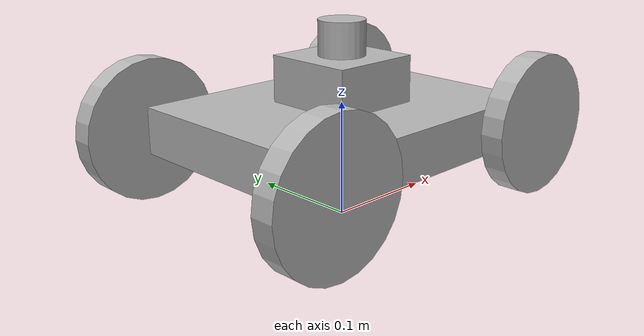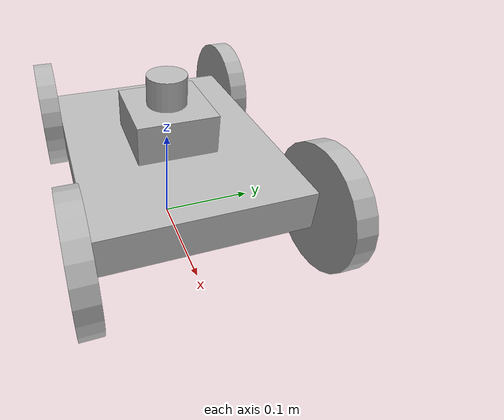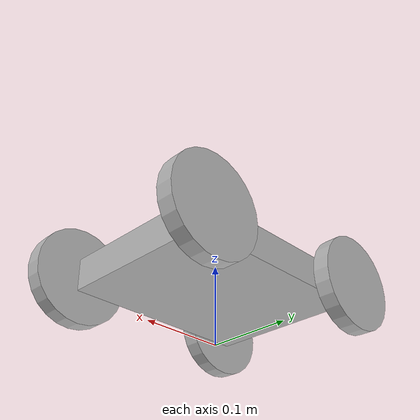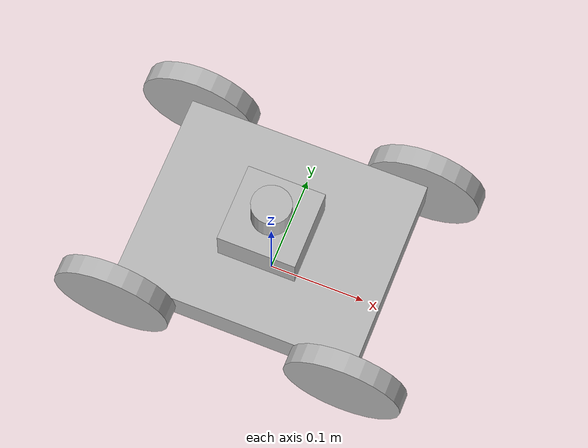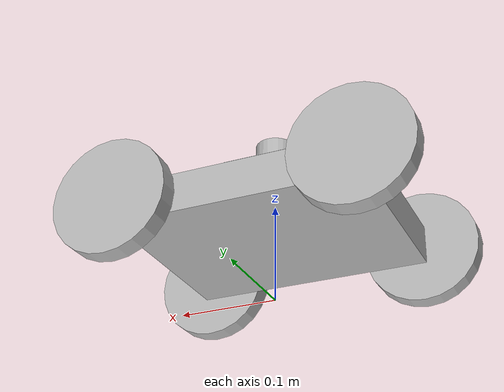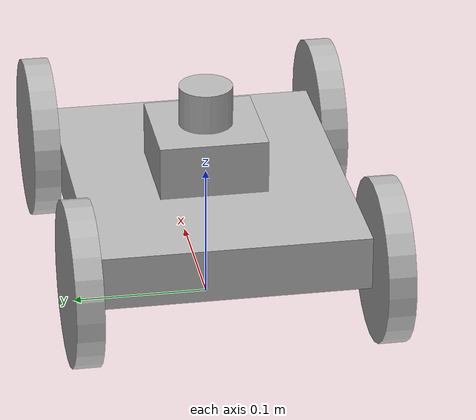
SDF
<?xml version="1.0" ?>
<sdf version="1.5">
	<model name="My_Agent">
	<pose> 0 0 0.08 0 0 0</pose>
	<link name="chassis">

        <inertial>
            <mass> 20 </mass>
            <inertia>
                <!-- 1/12 * mass * (d^2 + h^2) -->
                <ixx> 0.1068 </ixx>
                <iyy> 0.1068 </iyy>
                <izz> 0.1068 </izz>
            </inertia>
        </inertial>

        <collision name="chassis_collision">
		<geometry>
			<box>
				<size> 0.25 0.20 0.04 </size>
			</box>
		</geometry>
		</collision>

		<visual name="chassis_visual">
		<geometry>
			<box>
				<size> 0.25 0.20 0.04 </size>
			</box>
		</geometry>
		</visual>
	</link>

	<static> false </static>

	<link name="front_left_wheel">
        <pose> 0.120 0.11 0 0 1.5707 1.5707 </pose>
        <collision name="collision">
          <geometry>
            <cylinder>
              <radius>.06</radius>
              <length>.02</length>
            </cylinder>
          </geometry>
        </collision>
        <visual name="visual">
          <geometry>
            <cylinder>
              <radius>.06</radius>
              <length>.02</length>
            </cylinder>
          </geometry>
        </visual>
    </link>

	<link name="rear_left_wheel">
        <pose> -0.120 0.11 0 0 1.5707 1.5707 </pose>
        <collision name="collision">
          <geometry>
            <cylinder>
              <radius>.06</radius>
              <length>.02</length>
            </cylinder>
          </geometry>
        </collision>
        <visual name="visual">
          <geometry>
            <cylinder>
              <radius>.06</radius>
              <length>.02</length>
            </cylinder>
          </geometry>
        </visual>
    </link>

	<link name="front_right_wheel">
        <pose> 0.120 -0.11 0 0 1.5707 1.5707 </pose>
        <collision name="collision">
          <geometry>
            <cylinder>
              <radius>.06</radius>
              <length>.02</length>
            </cylinder>
          </geometry>
        </collision>
        <visual name="visual">
          <geometry>
            <cylinder>
              <radius>.06</radius>
              <length>.02</length>
            </cylinder>
          </geometry>
        </visual>
	</link>

	<link name="rear_right_wheel">
        <pose> -0.120 -0.11 0 0 1.5707 1.5707 </pose>
        <collision name="collision">
          <geometry>
            <cylinder>
              <radius>.06</radius>
              <length>.02</length>
            </cylinder>
          </geometry>
        </collision>
        <visual name="visual">
          <geometry>
            <cylinder>
              <radius>.06</radius>
              <length>.02</length>
            </cylinder>
          </geometry>
        </visual>
    </link>

	<!-- Motion Joints -->
	<joint type="revolute" name="front_left_wheel_hinge">
        <pose>0 0 -0.0175 0 0 0</pose>
        <child>front_left_wheel</child>
        <parent>chassis</parent>
        <axis>
          <xyz>0 0 1</xyz>
        </axis>
	</joint>

	<joint type="revolute" name="rear_left_wheel_hinge">
        <pose>0 0 -0.0175 0 0 0</pose>
        <child>rear_left_wheel</child>
        <parent>chassis</parent>
        <axis>
          <xyz>0 0 1</xyz>
        </axis>
	</joint>

	<joint type="revolute" name="front_right_wheel_hinge">
        <pose>0 0 0.0175 0 0 0</pose>
        <child>front_right_wheel</child>
        <parent>chassis</parent>
        <axis>
          <xyz>0 0 1</xyz>
        </axis>
	</joint>

	<joint type="revolute" name="rear_right_wheel_hinge">
        <pose>0 0 0.0175 0 0 0</pose>
        <child>rear_right_wheel</child>
        <parent>chassis</parent>
        <axis>
          <xyz>0 0 1</xyz>
        </axis>
	</joint>

	<!-- Make base for Lidar sensor -->
	<link name="Lidar_Base">
		<pose> 0 0 0.04 0 0 0 </pose>
		<collision name="Lidar Base collision">
			<geometry>
				<box>
					<size> 0.08 0.08 0.04 </size>
				</box>
			</geometry>
		</collision>
		<visual name="Lidar_base_visual">
			<geometry>
				<box>
					<size> 0.08 0.08 0.04 </size>
				</box>
			</geometry>
		</visual>
	</link>

	<joint name="Lidar_Base_Joint" type="fixed">
		<pose> 0 0 -0.02 0 0 0 </pose>
		<child> Lidar_Base </child>
		<parent> chassis </parent>
	</joint>

	<!-- Add Lidar sensor -->
	<link name="lidar_link">
		<pose> 0 0 0.075 0 0 0</pose>
		<collision name="lidar_collision">
		<geometry>
			<cylinder>
				<radius>.02</radius>
          		<length>.03</length>
			</cylinder>
		</geometry>
		</collision>

		<visual name="lidar_visual">
		<geometry>
			<cylinder>
				<radius>.02</radius>
          		<length>.03</length>
			</cylinder>
		</geometry>
		</visual>

    <!-- This is the ray sensor -->
	<sensor name="Lidar" type="ray">
		<pose>0 0 0 0 0 0</pose>
        <visualize> false </visualize>
		<update_rate> 20 </update_rate>
		<ray>
          <scan>
            <horizontal>
              <samples>360</samples> <!-- 1800 Before -->
              <resolution>1</resolution>
              <min_angle>-3.141592</min_angle>
              <max_angle>3.141592</max_angle>
            </horizontal>
            <vertical>
              <samples>16</samples>
              <resolution>1</resolution>
              <min_angle>-0.26</min_angle>
              <max_angle>0.26</max_angle>
            </vertical>
          </scan>
          <range>
            <min>0.25</min>
            <max>15</max> <!-- Was 150 before -->
            <resolution>0.01</resolution>
          </range>
          <noise>
            <type>gaussian</type>
            <mean>0</mean>
            <stddev>0.01</stddev>
          </noise>
        </ray>
        <plugin name="Lidar_plugin" filename="libgazebo_ros_block_laser.so">
            <topicName> My_Agent/ScanResults </topicName>
            <frameName> lidar_link  </frameName>
            <gaussianNoise> 0.01 </gaussianNoise>
        </plugin>
        </sensor>
    </link>

	<joint name="lidar_joint" type="fixed">
		<pose> 0 0 0.03 0 0 0 </pose>
		<child> lidar_link </child>
		<parent> Lidar_Base </parent>
	</joint>

    <!-- Velocity Control Plugin -->
	<plugin name="Control_Plugin" filename="libgazebo_ros_skid_steer_drive.so">
		<torque>5.0</torque>
		<leftFrontJoint> front_left_wheel_hinge </leftFrontJoint>
		<rightFrontJoint> front_right_wheel_hinge </rightFrontJoint>
		<leftRearJoint> rear_left_wheel_hinge </leftRearJoint>
		<rightRearJoint> rear_right_wheel_hinge </rightRearJoint>
        <commandTopic> /My_Agent/vel </commandTopic>
        <wheelDiameter> 0.12 </wheelDiameter>
        <wheelSeparation> 0.24 </wheelSeparation>
        <robotBaseFrame> chassis </robotBaseFrame>
        <broadcastTF> true </broadcastTF>
        <odometryTopic> /My_Agent/odometry </odometryTopic>
    </plugin>

	</model>
</sdf>
